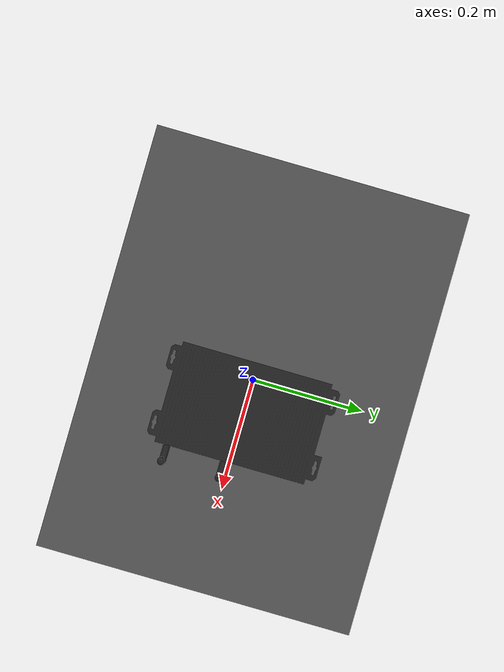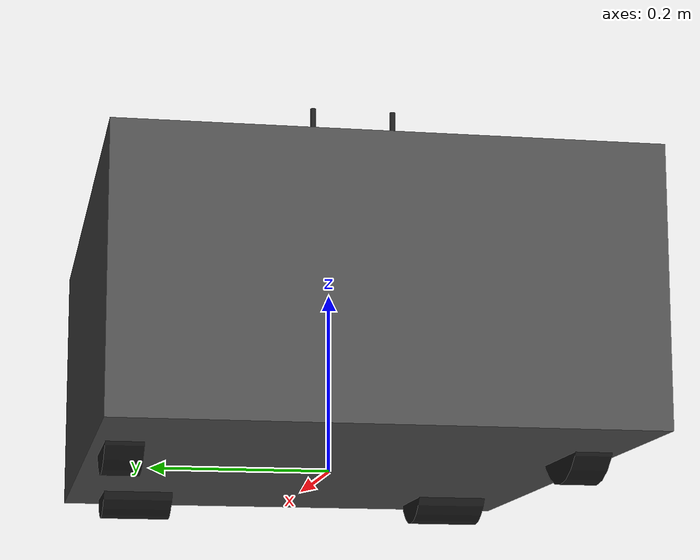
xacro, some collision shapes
<?xml version="1.0"?>
<robot name="boxer" xmlns:xacro="http://www.ros.org/wiki/xacro">
  <xacro:include filename="$(find boxer_description)/urdf/materials.urdf.xacro"/>

  <!-- The robot's origin, center-bottom of the main chassis -->
  <link name="base_link" />

  <!-- Projection of base_link on the ground to get the 3D data
  in the right frame w.r.t the ground. -->
  <link name="base_footprint" />
  <joint name="base_footprint_joint" type="fixed">
    <origin xyz="0 0 -0.0275" rpy="0 0 0" />
    <parent link="base_link" />
    <child link="base_footprint" />
  </joint>

  <!-- The main chassis for the robot -->
  <link name="chassis_link">
    <inertial>
      <!-- TODO inertial data copied from old boxer, may need fixing -->
      <origin xyz="0 0 0.07" rpy="1.5708 0 0" />
      <mass value="51"/>
      <inertia ixx="2.3" ixy="0" ixz="0" iyy="3.35" iyz="0.00" izz="1.22"/>
    </inertial>
    <visual>
      <origin xyz="0 0 0" rpy="0 0 0" />
      <geometry>
        <mesh filename="file://$(find boxer_description)/meshes/boxer24_no_sensors.stl" scale="0.001 0.001 0.001" />
      </geometry>
      <material name="Boxer_DarkGrey" />
    </visual>
    <collision>
      <geometry>
        <!-- For simplicity, use a box collider instead of the pretty mesh -->
        <box size="0.74143 0.55093 0.2884" rpy="0 0 0" />
      </geometry>
      <origin xyz="0 0 0.1442" rpy="0 0 0" />
    </collision>
  </link>
  <joint name="chassis_joint" type="fixed">
    <parent link="base_link" />
    <child link="chassis_link" />
    <origin xyz="0 0 0" rpy="0 0 0" />
  </joint>
  <gazebo reference="chassis_link">
    <visual>
      <material>Gazebo/Orange</material>
    </visual>
  </gazebo>

  <!-- Lift joint -->
  <link name="lift_link" />
  <joint name="lift_joint" type="prismatic">
    <origin rpy="1.5708 0 0" xyz="0 0 0.177"/>
    <parent link="chassis_link"/>
    <child link="lift_link"/>
    <axis xyz="0 1 0"/>
    <limit effort="10000.0" lower="0" upper="0.084" velocity="0.02" />
    <dynamics damping="100.0" friction="100"/>
  </joint>

  <!-- Top plate -->
  <!--
    TODO connect the top plate to the lift link
    TODO separate the top plate from the lower chassis in the STL
  -->
  <link name="top_plate_link" />
  <joint name="top_plate_joint" type="fixed">
    <parent link="chassis_link" />
    <child link="top_plate_link" />
    <origin xyz="0 0 0.2884" rpy="0 0 0" />
  </joint>

  <!-- Backpack PC -->
  <xacro:if value="$(optenv BOXER_PC 1)">
    <xacro:property name="pc_model" value="$(optenv BOXER_PC_MODEL evs-2000)" />

    <!-- Standard CPR backpack pc: Vecow EVS-2000 series -->
    <xacro:if value="${pc_model == 'evs-2000'}">
      <xacro:include filename="$(find boxer_description)/urdf/include/vecow_evs2000.urdf.xacro" />
      <xacro:vecow_evs2000 prefix="vecow" parent="top_plate_link">
        <origin xyz="$(optenv BOXER_PC_XYZ 0.0575 0 0)" rpy="$(optenv BOXER_PC_RPY 0 0 0)" />
      </xacro:vecow_evs2000>
    </xacro:if>

    <!-- Alternate Vecow: ECX-2000 series -->
    <xacro:if value="${pc_model == 'ecx-2000'}">
      <xacro:include filename="$(find boxer_description)/urdf/include/vecow_ecx2000.urdf.xacro" />
      <xacro:vecow_ecx2000 prefix="vecow" parent="top_plate_link">
        <origin xyz="$(optenv BOXER_PC_XYZ 0.0575 0 0)" rpy="$(optenv BOXER_PC_RPY 0 0 1.57)" />
      </xacro:vecow_ecx2000>
    </xacro:if>

    <!-- Commercial mini-ITX motherboard with a mini case -->
    <xacro:if value="${pc_model == 'mini-itx'}">
      <xacro:include filename="$(find boxer_description)/urdf/include/mini_itx.urdf.xacro" />
      <xacro:mini_itx prefix="pc" parent="top_plate_link">
        <origin xyz="$(optenv BOXER_PC_XYZ 0.0575 0 0)" rpy="$(optenv BOXER_PC_RPY 0 0 0)" />
      </xacro:mini_itx>
    </xacro:if>
  </xacro:if>

  <!-- Mounting points for additional payloads -->
  <link name="mid_mount" />
  <joint name="mid_mount_joint" type="fixed">
    <parent link="top_plate_link" />
    <child link="mid_mount" />
    <origin xyz="0 0 0" rpy="0 0 0" />
  </joint>

  <link name="front_mount" />
  <joint name="front_mount_joint" type="fixed">
    <parent link="top_plate_link" />
    <child link="front_mount" />
    <origin xyz="0.2792 0 0" rpy="0 0 0" />
  </joint>

  <link name="rear_mount" />
  <joint name="rear_mount_joint" type="fixed">
    <parent link="top_plate_link" />
    <child link="rear_mount" />
    <origin xyz="-0.2792 0 0" rpy="0 0 0" />
  </joint>

  <!-- Include sub files -->
  <xacro:include filename="$(find boxer_description)/urdf/include/wheels_and_casters.urdf.xacro" />

  <!-- User extensions -->

  <!-- Bring in simulation data for Gazebo. -->
  <xacro:include filename="$(find boxer_description)/urdf/ros2_control.xacro" />

  </robot>

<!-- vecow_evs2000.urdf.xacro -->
<robot xmlns:xacro="http://wiki.ros.org/xacro" >
  <xacro:include filename="$(find boxer_description)/urdf/include/antenna.urdf.xacro" />

  <xacro:macro name="vecow_evs2000" params="prefix parent *origin">
    <link name="${prefix}_base_link">
      <visual>
        <geometry>
          <mesh filename="package://boxer_description/meshes/vecow_evs2000.stl" scale="0.001 0.001 0.001" />
        </geometry>
        <origin xyz="0 0 0" rpy="0 0 0" />
        <material name="Boxer_Black" />
      </visual>
      <collision>
        <geometry>
          <box size="0.174 0.27 0.08" />
        </geometry>
        <origin xyz="0 0 0.04" rpy="0 0 0" />
      </collision>
    </link>
    <joint name="${prefix}_base_joint" type="fixed">
      <parent link="${parent}" />
      <child link="${prefix}_base_link" />
      <xacro:insert_block name="origin" />
    </joint>
    <gazebo reference="${prefix}_base_link">
      <material>Gazebo/Black</material>
      <turnGravityOff>false</turnGravityOff>
    </gazebo>

    <xacro:wifi_antenna prefix="wifi1" parent="${prefix}_base_link">
      <origin xyz="0.08 -0.01 0.015" rpy="${-pi/2} 0 ${-pi/2}" />
    </xacro:wifi_antenna>

    <xacro:wifi_antenna prefix="wifi2" parent="${prefix}_base_link">
      <origin xyz="0.08 -0.11 0.015" rpy="${-pi/2} 0 ${-pi/2}" />
    </xacro:wifi_antenna>
  </xacro:macro>
</robot>

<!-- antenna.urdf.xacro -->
<robot xmlns:xacro="http://wiki.ros.org/xacro">
  <xacro:macro name="wifi_antenna" params="prefix parent angle:=1.57079632679 length:=0.17 *origin">
    <link name="${prefix}_antenna_base_link">
      <visual>
        <geometry>
          <cylinder radius="0.0065" length="0.035" />
        </geometry>
        <origin xyz="0 0 0.0175" rpy="0 0 0" />
        <material name="Boxer_Black" />
      </visual>
      <collision>
        <geometry>
          <cylinder radius="0.0065" length="0.035" />
        </geometry>
        <origin xyz="0 0 0.0175" rpy="0 0 0" />
      </collision>
    </link>
    <gazebo reference="${prefix}_antenna_base_link">
      <material>Gazebo/Black</material>
      <turnGravityOff>false</turnGravityOff>
    </gazebo>

    <link name="${prefix}_antenna_hinge_link" />

    <link name="${prefix}_antenna_outer_segment">
      <visual>
        <geometry>
          <cylinder radius="0.0065" length="0.1" />
        </geometry>
        <origin xyz="0 0 0.05" rpy="0 0 0" />
        <material name="Boxer_Black" />
      </visual>
      <collision>
        <geometry>
          <cylinder radius="0.0065" length="0.1" />
        </geometry>
        <origin xyz="0 0 0.05" rpy="0 0 0" />
      </collision>
    </link>
    <gazebo reference="${prefix}_antenna_outer_segment">
      <material>Gazebo/Black</material>
      <turnGravityOff>false</turnGravityOff>
    </gazebo>

    <link name="${prefix}_antenna_inner_segment">
      <visual>
        <geometry>
          <cylinder radius="0.0035" length="${length}" />
        </geometry>
        <origin xyz="0 0 ${length/2}" rpy="0 0 0" />
        <material name="Boxer_Black" />
      </visual>
      <collision>
        <geometry>
          <cylinder radius="0.0035" length="${length}" />
        </geometry>
        <origin xyz="0 0 ${length/2}" rpy="0 0 0" />
      </collision>
    </link>
    <gazebo reference="${prefix}_antenna_inner_segment">
      <material>Gazebo/Black</material>
      <turnGravityOff>false</turnGravityOff>
    </gazebo>

    <joint name="${prefix}_antenna_base_joint" type="fixed">
      <parent link="${parent}" />
      <child link="${prefix}_antenna_base_link" />
      <xacro:insert_block name="origin" />
    </joint>

    <joint name="${prefix}_antenna_hinge_joint" type="fixed">
      <parent link="${prefix}_antenna_base_link" />
      <child link="${prefix}_antenna_hinge_link" />
      <origin xyz="0 0 0.035" rpy="${angle} 0 0" />
    </joint>

    <joint name="${prefix}_antenna_inner_segment_joint" type="fixed">
      <parent link="${prefix}_antenna_hinge_link" />
      <child link="${prefix}_antenna_inner_segment" />
      <origin xyz="0 0 0" rpy="0 0 0" />
    </joint>

    <joint name="${prefix}_antenna_outer_segment_joint" type="fixed">
      <parent link="${prefix}_antenna_hinge_link" />
      <child link="${prefix}_antenna_outer_segment" />
      <origin xyz="0 0 0" rpy="0 0 0" />
    </joint>
  </xacro:macro>
</robot>

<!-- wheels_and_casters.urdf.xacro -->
<robot xmlns:xacro="http://wiki.ros.org/xacro">
  <!-- The wheels all rotate around their X axis, so for simplicity include a rotated parent link -->
  <link name="drive_train_link" />
  <joint name="drive_train_joint" type="fixed">
    <parent link="chassis_link" />
    <child link="drive_train_link" />
    <origin xyz="0 0 0" rpy="0 0 ${pi/2}" />
  </joint>

  <xacro:macro name="rotacastor" params="name parent *origin">
    <link name="${name}_link">
      <inertial>
        <origin xyz="0 0 0" rpy="0 0 0"/>
        <mass value="100"/>
        <inertia ixx="0.2" ixy="0" ixz="0" iyy="0.2" iyz="0" izz="0.2"/>
      </inertial>
      <visual>
        <origin xyz="0 0 0" rpy="0 1.5708 0" />
        <geometry>
          <cylinder radius="0.0625" length="0.0827" />
        </geometry>
        <material name="Boxer_Black"/>
      </visual>
      <collision>
        <origin xyz="0 0 0" rpy="0 1.5708 0" />
        <geometry>
          <cylinder radius="0.0625" length="0.0827" />
        </geometry>
      </collision>
    </link>
    <joint name="${name}_joint" type="fixed">
      <xacro:insert_block name="origin" />
      <parent link="${parent}" />
      <child link="${name}_link" />
      <axis  xyz="1 0 0" />
      <dynamics damping="1.0" />
    </joint>

    <gazebo reference="${name}_link">
      <material>Gazebo/DarkGrey</material>
      <selfCollide>false</selfCollide>
      <!-- For castors, we need high PID values to avoid slippage -->
      <kp>100000000.0</kp>
      <kd>10000.0</kd>
      <!-- Castors will slide freely to allow turning -->
      <mu1>0</mu1>
      <mu2>0</mu2>
      <minDepth>0.0</minDepth>
    </gazebo>
  </xacro:macro>

  <xacro:macro name="drive_wheel" params="name parent *origin">
    <link name="${name}_link">
      <inertial>
        <origin xyz="0 0 0" rpy="0 0 0"/>
        <mass value="100"/>
        <inertia ixx="0.2" ixy="0" ixz="0" iyy="0.2" iyz="0" izz="0.2"/>
      </inertial>
      <visual>
        <origin xyz="0 0 0" rpy="0 1.5708 0" />
        <geometry>
          <cylinder radius="0.080" length="0.04" />
        </geometry>
        <material name="Boxer_Black"/>
      </visual>
      <collision>
        <origin xyz="0 0 0" rpy="0 1.5708 0" />
        <geometry>
          <cylinder radius="0.080" length="0.04" />
        </geometry>
      </collision>
    </link>

    <joint name="${name}_joint" type="continuous">
      <xacro:insert_block name="origin" />
      <parent link="${parent}" />
      <child link="${name}_link" />
      <axis xyz="1 0 0" />
      <dynamics damping="1.0" />
    </joint>

    <transmission name="${name}_transmission">
      <type>transmission_interface/SimpleTransmission</type>
      <joint name="${name}_joint">
        <hardwareInterface>hardware_interface/VelocityJointInterface</hardwareInterface>
      </joint>
      <actuator name="${name}_actuator">
        <mechanicalReduction>1</mechanicalReduction>
      </actuator>
    </transmission>

    <gazebo reference="${name}_link">
      <material>Gazebo/Black</material>
      <selfCollide>false</selfCollide>
      <!-- For wheels, we need high PID values to avoid slippage -->
      <kp value="100000000.0" />
      <kd value="10000.0" />
      <!-- Wheels have friction to prevent slippage -->
      <mu1 value="0.1"/>
      <mu2 value="0.1"/>
      <minDepth>0.0</minDepth>
    </gazebo>
  </xacro:macro>

  <xacro:rotacastor name="rotacastor_right" parent="drive_train_link">
    <origin xyz="-0.1937 -0.2792 0.0347" rpy="0 0 0" />
  </xacro:rotacastor>
  <xacro:rotacastor name="rotacastor_left" parent="drive_train_link">
    <origin xyz="0.1937 -0.2792 0.0347" rpy="0 0 0" />
  </xacro:rotacastor>

  <xacro:drive_wheel name="wheel_right" parent="drive_train_link">
    <origin xyz="-0.2436 0.1503 0.0526" rpy="0 0 0" />
  </xacro:drive_wheel>
  <xacro:drive_wheel name="wheel_left" parent="drive_train_link">
    <origin xyz="0.2436 0.1503 0.0526" rpy="0 0 0" />
  </xacro:drive_wheel>
</robot>
